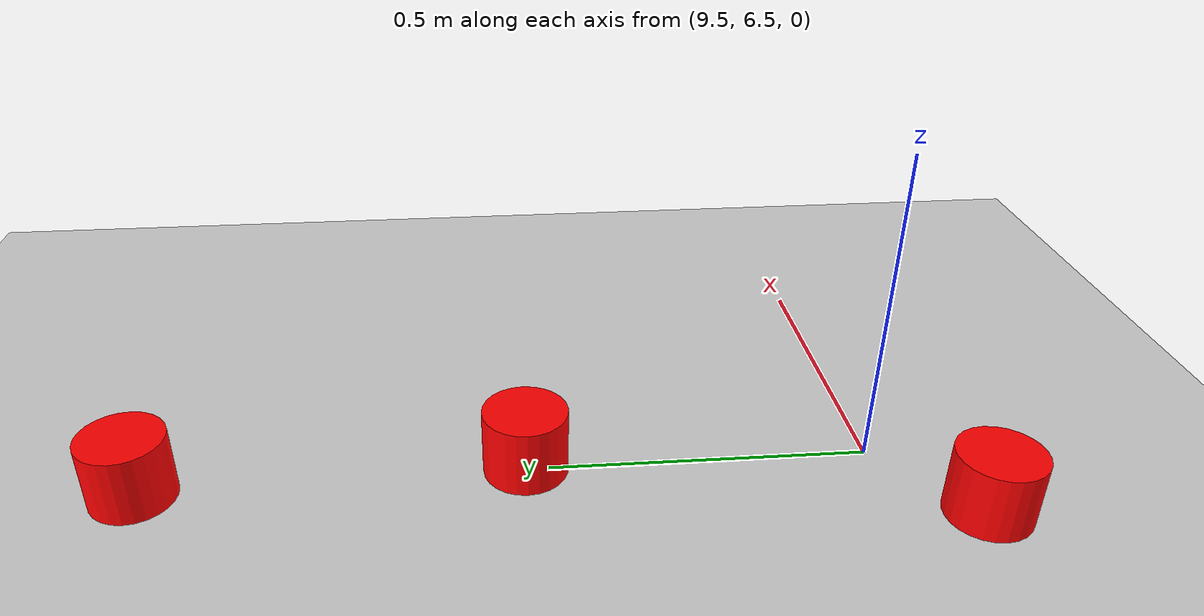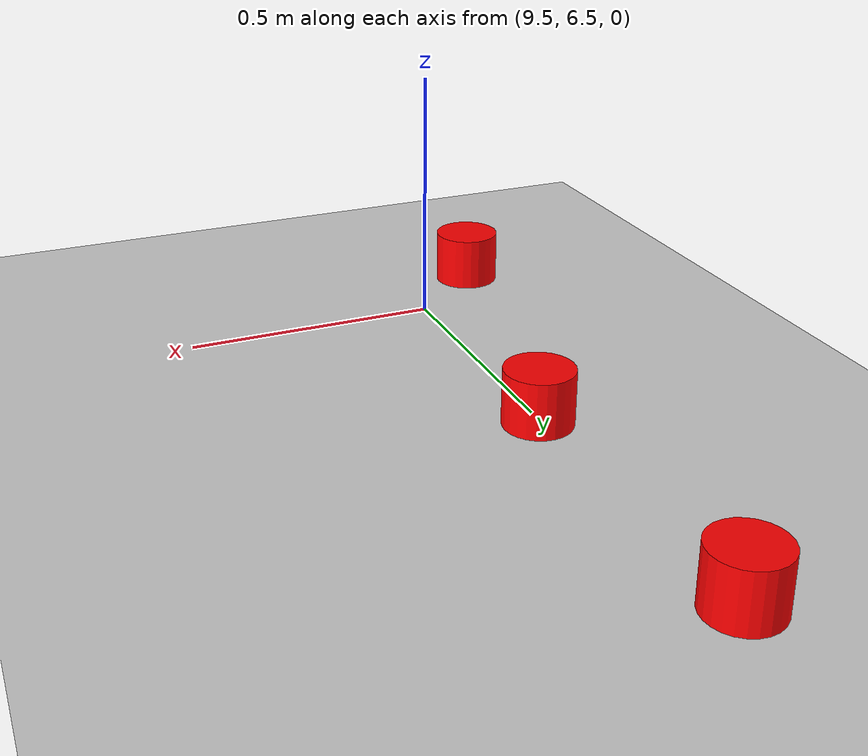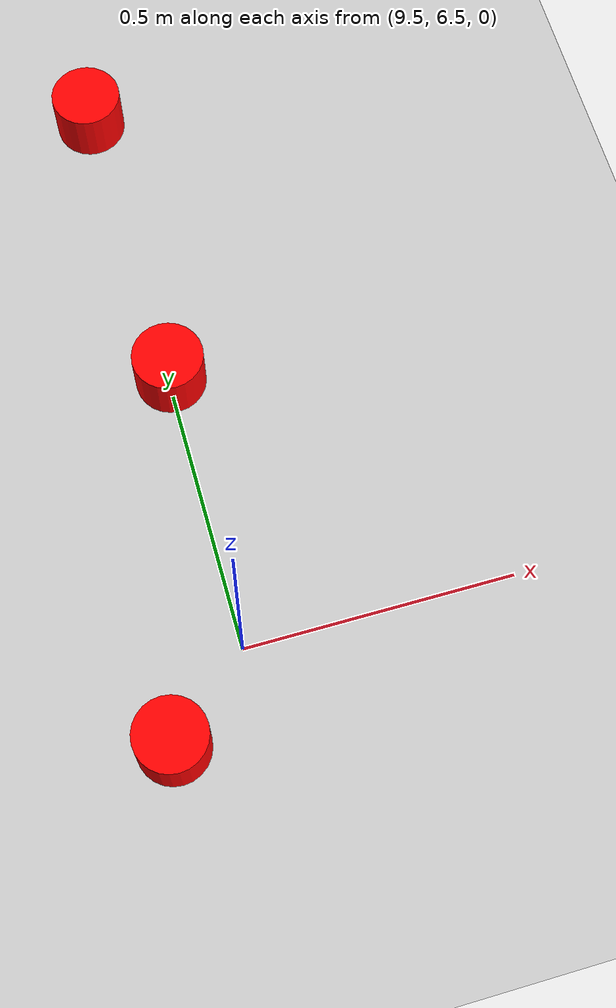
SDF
<sdf version="1.7">
 <world name="default">
  <model name="ground_plane">
   <static>1</static>
   <link name="link">
    <collision name="collision">
     <geometry><plane><normal>0 0 1</normal><size>100 100</size></plane></geometry>
     <surface>
      <contact><collide_bitmask>65535</collide_bitmask></contact>
      <friction><ode><mu>100</mu><mu2>50</mu2></ode></friction>
     </surface>
    </collision>
    <visual name="visual">
     <cast_shadows>0</cast_shadows>
     <geometry><plane><normal>0 0 1</normal><size>100 100</size></plane></geometry>
     <material>
      <script><uri>file://media/materials/scripts/gazebo.material</uri><name>Gazebo/Grey</name></script>
     </material>
    </visual>
   </link>
  </model>
  <model name="latinha_verm_clone_5_clone_0_clone_clone_2">
   <link name="link">
    <inertial>
     <mass>1</mass>
     <inertia><ixx>0.145833</ixx><ixy>0</ixy><ixz>0</ixz><iyy>0.145833</iyy><iyz>0</iyz><izz>0.125</izz></inertia>
    </inertial>
    <visual name="visual">
     <geometry><cylinder><radius>0.066</radius><length>0.114</length></cylinder></geometry>
     <material>
      <script><name>Gazebo/Gray</name><uri>file://media/materials/scripts/gazebo.material</uri></script>
      <shader type="pixel"><normal_map>__default__</normal_map></shader>
      <ambient>1 0 0 1</ambient>
      <diffuse>1 0 0 1</diffuse>
      <specular>0.1 0.1 0.1 1</specular>
      <emissive>0 0 0 1</emissive>
     </material>
    </visual>
    <collision name="collision">
     <geometry><cylinder><radius>0.05</radius><length>0.1</length></cylinder></geometry>
     <surface>
      <friction>
       <ode><mu>1</mu><mu2>1</mu2><fdir1>0 0 0</fdir1><slip1>0</slip1><slip2>0</slip2></ode>
       <torsional>
        <coefficient>1</coefficient>
        <patch_radius>0</patch_radius>
        <surface_radius>0</surface_radius>
        <use_patch_radius>1</use_patch_radius>
        <ode><slip>0</slip></ode>
       </torsional>
      </friction>
      <bounce><restitution_coefficient>0</restitution_coefficient><threshold>1e+06</threshold></bounce>
      <contact>
       <collide_without_contact>0</collide_without_contact>
       <collide_without_contact_bitmask>1</collide_without_contact_bitmask>
       <collide_bitmask>1</collide_bitmask>
       <ode>
        <soft_cfm>0</soft_cfm>
        <soft_erp>0.2</soft_erp>
        <kp>1e+13</kp>
        <kd>1</kd>
        <max_vel>0.01</max_vel>
        <min_depth>0</min_depth>
       </ode>
       <bullet>
        <split_impulse>1</split_impulse>
        <split_impulse_penetration_threshold>-0.01</split_impulse_penetration_threshold>
        <soft_cfm>0</soft_cfm>
        <soft_erp>0.2</soft_erp>
        <kp>1e+13</kp>
        <kd>1</kd>
       </bullet>
      </contact>
     </surface>
    </collision>
   </link>
   <static>0</static>
   <pose>9.34367 6.36617 0.049995 2e-06 -0 6.4e-05</pose>
  </model>
  <model name="latinha_verm_clone_5_clone_0_clone_clone_3">
   <link name="link">
    <inertial>
     <mass>1</mass>
     <inertia><ixx>0.145833</ixx><ixy>0</ixy><ixz>0</ixz><iyy>0.145833</iyy><iyz>0</iyz><izz>0.125</izz></inertia>
    </inertial>
    <visual name="visual">
     <geometry><cylinder><radius>0.066</radius><length>0.114</length></cylinder></geometry>
     <material>
      <script><name>Gazebo/Gray</name><uri>file://media/materials/scripts/gazebo.material</uri></script>
      <shader type="pixel"><normal_map>__default__</normal_map></shader>
      <ambient>1 0 0 1</ambient>
      <diffuse>1 0 0 1</diffuse>
      <specular>0.1 0.1 0.1 1</specular>
      <emissive>0 0 0 1</emissive>
     </material>
    </visual>
    <collision name="collision">
     <geometry><cylinder><radius>0.05</radius><length>0.1</length></cylinder></geometry>
     <surface>
      <friction>
       <ode><mu>1</mu><mu2>1</mu2><fdir1>0 0 0</fdir1><slip1>0</slip1><slip2>0</slip2></ode>
       <torsional>
        <coefficient>1</coefficient>
        <patch_radius>0</patch_radius>
        <surface_radius>0</surface_radius>
        <use_patch_radius>1</use_patch_radius>
        <ode><slip>0</slip></ode>
       </torsional>
      </friction>
      <bounce><restitution_coefficient>0</restitution_coefficient><threshold>1e+06</threshold></bounce>
      <contact>
       <collide_without_contact>0</collide_without_contact>
       <collide_without_contact_bitmask>1</collide_without_contact_bitmask>
       <collide_bitmask>1</collide_bitmask>
       <ode>
        <soft_cfm>0</soft_cfm>
        <soft_erp>0.2</soft_erp>
        <kp>1e+13</kp>
        <kd>1</kd>
        <max_vel>0.01</max_vel>
        <min_depth>0</min_depth>
       </ode>
       <bullet>
        <split_impulse>1</split_impulse>
        <split_impulse_penetration_threshold>-0.01</split_impulse_penetration_threshold>
        <soft_cfm>0</soft_cfm>
        <soft_erp>0.2</soft_erp>
        <kp>1e+13</kp>
        <kd>1</kd>
       </bullet>
      </contact>
     </surface>
    </collision>
   </link>
   <static>0</static>
   <pose>9.5048 7.03565 0.049995 2e-06 -0 6.4e-05</pose>
  </model>
  <model name="latinha_verm_clone_5_clone_0_clone_clone_4">
   <link name="link">
    <inertial>
     <mass>1</mass>
     <inertia><ixx>0.145833</ixx><ixy>0</ixy><ixz>0</ixz><iyy>0.145833</iyy><iyz>0</iyz><izz>0.125</izz></inertia>
    </inertial>
    <visual name="visual">
     <geometry><cylinder><radius>0.066</radius><length>0.114</length></cylinder></geometry>
     <material>
      <script><name>Gazebo/Gray</name><uri>file://media/materials/scripts/gazebo.material</uri></script>
      <shader type="pixel"><normal_map>__default__</normal_map></shader>
      <ambient>1 0 0 1</ambient>
      <diffuse>1 0 0 1</diffuse>
      <specular>0.1 0.1 0.1 1</specular>
      <emissive>0 0 0 1</emissive>
     </material>
    </visual>
    <collision name="collision">
     <geometry><cylinder><radius>0.05</radius><length>0.1</length></cylinder></geometry>
     <surface>
      <friction>
       <ode><mu>1</mu><mu2>1</mu2><fdir1>0 0 0</fdir1><slip1>0</slip1><slip2>0</slip2></ode>
       <torsional>
        <coefficient>1</coefficient>
        <patch_radius>0</patch_radius>
        <surface_radius>0</surface_radius>
        <use_patch_radius>1</use_patch_radius>
        <ode><slip>0</slip></ode>
       </torsional>
      </friction>
      <bounce><restitution_coefficient>0</restitution_coefficient><threshold>1e+06</threshold></bounce>
      <contact>
       <collide_without_contact>0</collide_without_contact>
       <collide_without_contact_bitmask>1</collide_without_contact_bitmask>
       <collide_bitmask>1</collide_bitmask>
       <ode>
        <soft_cfm>0</soft_cfm>
        <soft_erp>0.2</soft_erp>
        <kp>1e+13</kp>
        <kd>1</kd>
        <max_vel>0.01</max_vel>
        <min_depth>0</min_depth>
       </ode>
       <bullet>
        <split_impulse>1</split_impulse>
        <split_impulse_penetration_threshold>-0.01</split_impulse_penetration_threshold>
        <soft_cfm>0</soft_cfm>
        <soft_erp>0.2</soft_erp>
        <kp>1e+13</kp>
        <kd>1</kd>
       </bullet>
      </contact>
     </surface>
    </collision>
   </link>
   <static>0</static>
   <pose>9.48584 7.6253 0.049999 2e-06 1e-06 6.1e-05</pose>
  </model>
 </world>
</sdf>
